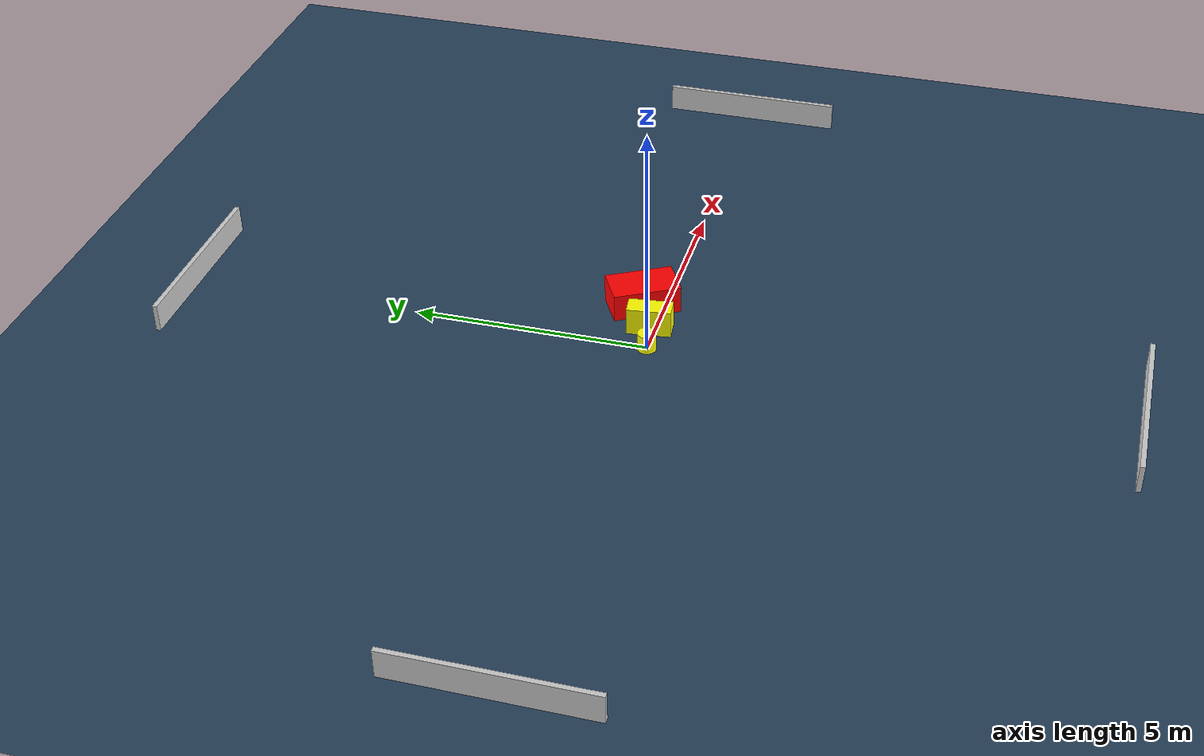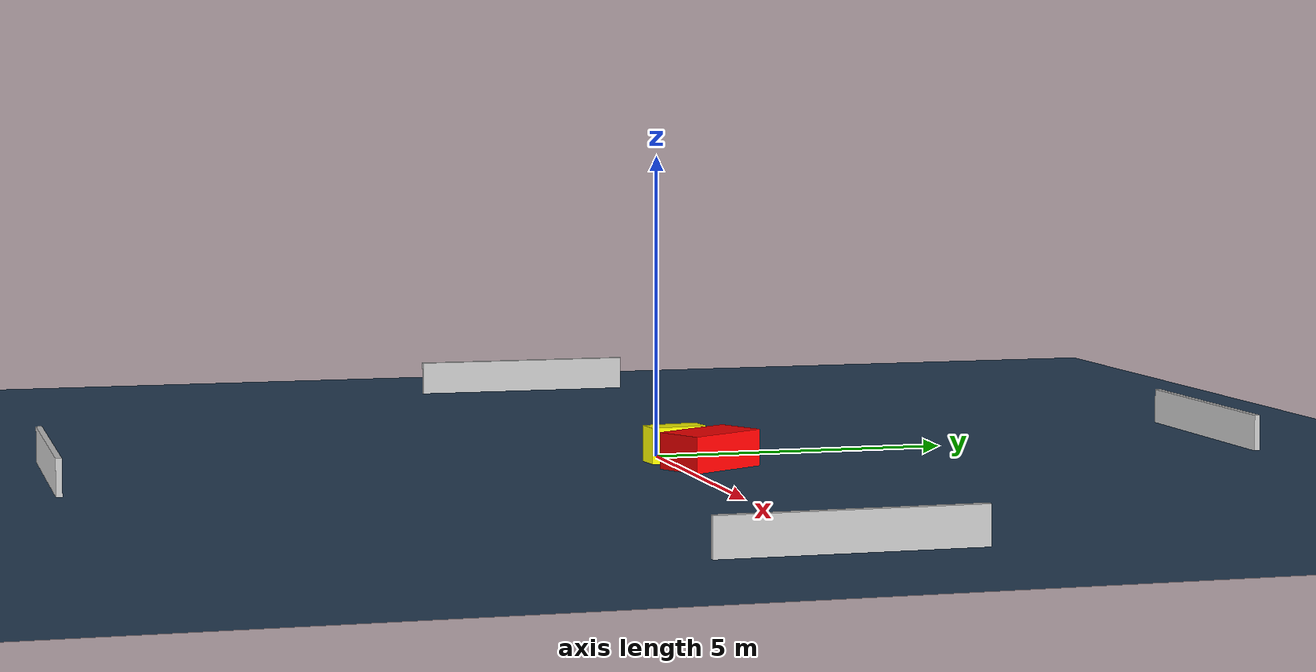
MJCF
<?xml version="1.0" ?>
<mujoco model="generated_environment">
  <option timestep="0.01" integrator="RK4" cone="elliptic"/>
  <default>
    <geom density="1"/>
  </default>
  <asset>
    <texture builtin="gradient" height="3072" name="skybox" rgb1="0.3 0.5 0.7" rgb2="0 0 0" type="skybox" width="512"/>
    <texture builtin="checker" height="300" name="groundplane" rgb1="0.2 0.3 0.4" rgb2="0.1 0.2 0.3" type="2d" width="300"/>
    <material name="groundplane" reflectance="0.2" texrepeat="5 5" texture="groundplane"/>
  </asset>
  <worldbody>
    <light dir="0 0 -1" directional="true" pos="0 0 1.5"/>
    <geom condim="3" friction="0.5 0.005 0.001" material="groundplane" name="floor" pos="0 0 0" size="0 0 0.05" type="plane"/>
    <body name="walls">
      <geom name="wall_1" condim="4" pos="-10.0 0.0 0.3" rgba="0.800000011920929 0.800000011920929 0.800000011920929 1.0" size="0.05 2.0 0.3" type="box"/>
      <geom name="wall_2" condim="4" pos="10.0 0.0 0.3" rgba="0.800000011920929 0.800000011920929 0.800000011920929 1.0" size="0.05 2.0 0.3" type="box"/>
      <geom name="wall_3" condim="4" pos="0.0 -10.0 0.3" rgba="0.800000011920929 0.800000011920929 0.800000011920929 1.0" size="2.0 0.05 0.3" type="box"/>
      <geom name="wall_4" condim="4" pos="0.0 10.0 0.3" rgba="0.800000011920929 0.800000011920929 0.800000011920929 1.0" size="2.0 0.05 0.3" type="box"/>
    </body>
    <body name="robot">
      <joint name="joint_x" type="slide" pos="0 0 0" axis="1 0 0"/>
      <joint name="joint_y" type="slide" pos="0 0 0" axis="0 1 0"/>
      <geom name="robot" type="cylinder" pos="0.0 0.0 0.2" size="0.2 0.2 0.0" mass="5.0" friction="1.0 0.005 0.0001" condim="4" rgba="1.0 1.0 0.0 1.0"/>
    </body>
    <body name="obstacle_1_movable">
      <geom name="obstacle_1_movable" condim="4" pos="0.6631562576132931 0.1135089334885327 0.3" euler="0 0 96.5337612064262" friction="0.0 0.005 0.001" rgba="1.0 1.0 0.0 1.0" size="0.46758750173964797 0.2113214686070053 0.3" type="box" mass="0.1"/>
      <joint type="free"/>
    </body>
    <body name="obstacle_2_static">
      <geom name="obstacle_2_static" condim="4" pos="1.4867340211927085 0.48417477266351466 0.3" euler="0 0 28.99177002838617" friction="0.0 0.005 0.001" rgba="1.0 0.0 0.0 1.0" size="0.4215046024020811 0.7261166688103748 0.3" type="box"/>
    </body>
  </worldbody>
  <actuator>
    <motor name="actuator_x" joint="joint_x" gear="1" ctrlrange="-1 1"/>
    <motor name="actuator_y" joint="joint_y" gear="1" ctrlrange="-1 1"/>
  </actuator>
</mujoco>
